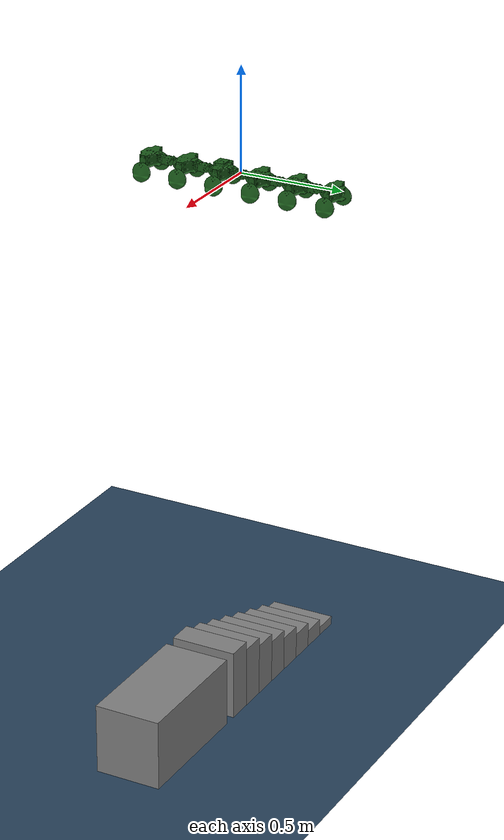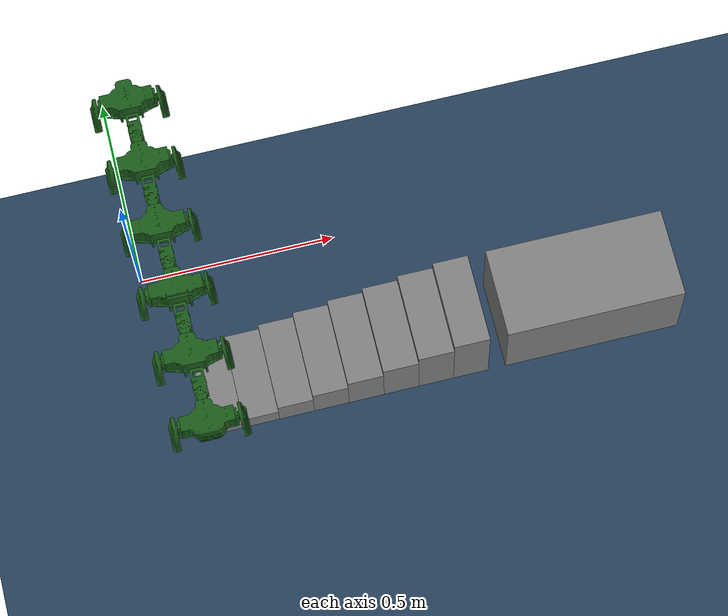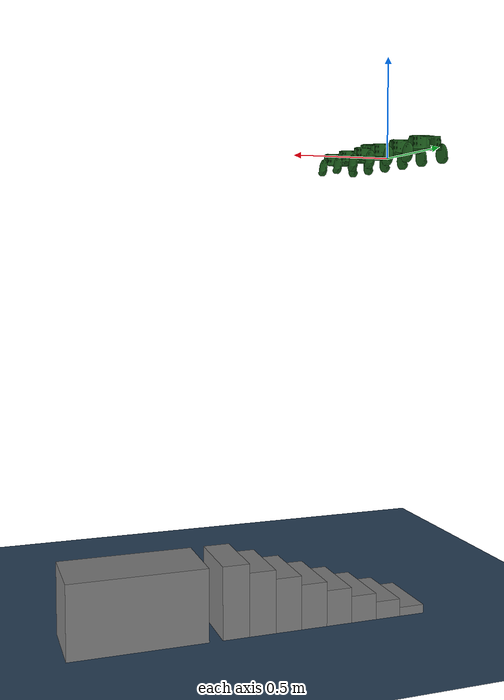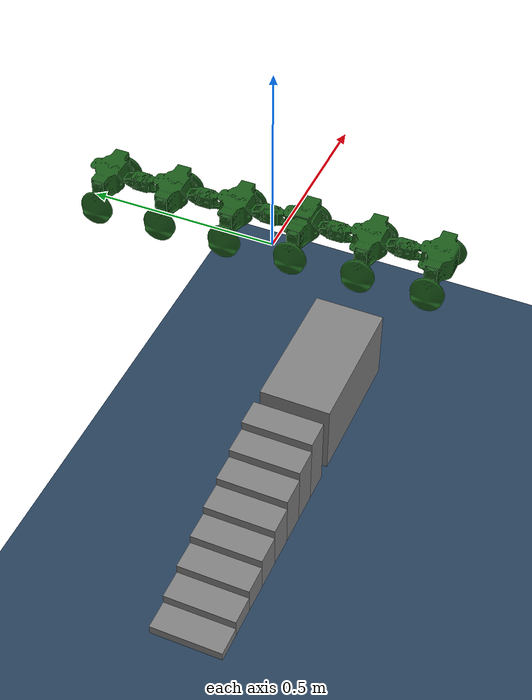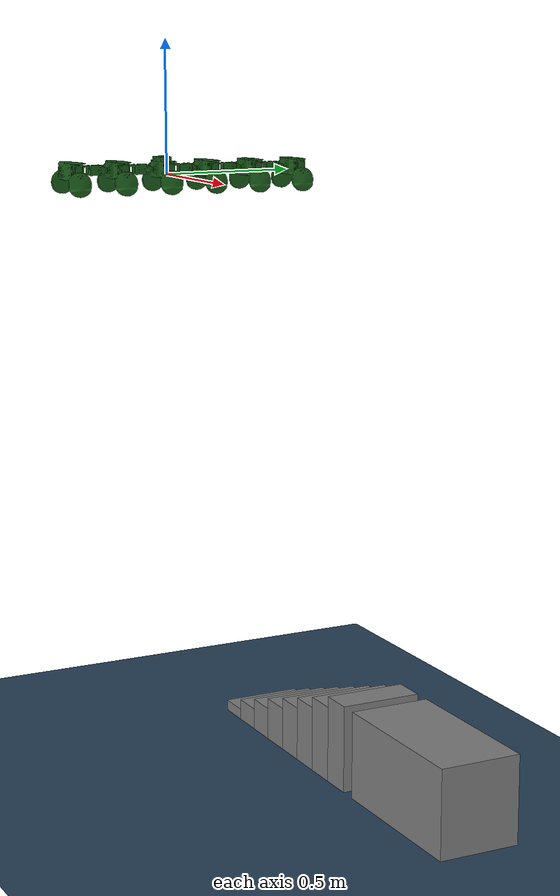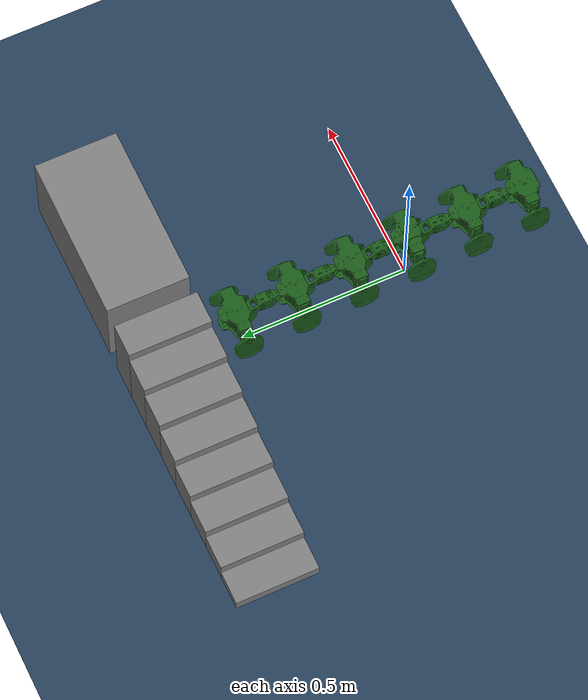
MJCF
<?xml version='1.0' encoding='UTF-8'?>
<mujoco model="scutl_stairs">
  <option timestep="0.004" gravity="0 0 -9.84"/>
  <visual>
    <global offwidth="1920" offheight="1080"/>
  </visual>
  <asset>
    <mesh name="body_middle_mesh" file="body_middle.stl"/>
    <mesh name="body_middle_roof_mesh" file="body_middle_roof.stl"/>
    <mesh name="body_middle_head_mesh" file="body_middle_head.stl"/>
    <mesh name="motor_L_mesh" file="motor_L.stl"/>
    <mesh name="motor_R_mesh" file="motor_R.stl"/>
    <mesh name="o_leg_L_mesh" file="o_leg_L.stl"/>
    <mesh name="o_leg_R_mesh" file="o_leg_R.stl"/>
    <mesh name="body_joint_mesh" file="body_joint.stl"/>
    <texture name="grid" type="2d" builtin="checker" rgb1=".1 .2 .3" rgb2=".2 .3 .4" width="300" height="300"/>
    <texture name="stair_tex" type="2d" builtin="checker" rgb1=".4 .4 .4" rgb2=".6 .6 .6" width="100" height="100"/>
    <material name="grid" texture="grid" texrepeat="30 30" reflectance="0"/>
    <material name="stair_mat" texture="stair_tex" texrepeat="2 2" reflectance="0.1"/>
    <material name="robot_green" rgba="0.1 0.35 0.1 1"/>
  </asset>
  <default>
    <default class="robot">
      <geom material="robot_green" condim="6" friction="1.5 0.05 0.01"/>
    </default>
    <default class="stair">
      <geom type="box" material="stair_mat" condim="6" friction="1.5 0.05 0.01"/>
    </default>
  </default>
  <worldbody>
    <light name="strong_light" pos="0 0 5" dir="0 0 -4" directional="true" diffuse="1 1 4" specular="0.3 0.3 0.6" active="true" castshadow="false" cutoff="100" exponent="10"/>

    <!-- flat approach ground -->
    <geom name="ground" type="plane" pos="0 0 -2.12" size="10 10 0.4" material="grid" condim="6" friction="1.5 0.05 0.01"/>

    <!-- staircase: 8 steps, each 0.04m rise, 0.12m run, 0.3m wide -->
    <!-- step 1 -->
    <geom class="stair" name="step1" size="0.06 0.15 0.02" pos="0.12 0.36184 -2.10"/>
    <!-- step 2 -->
    <geom class="stair" name="step2" size="0.06 0.15 0.04" pos="0.24 0.36184 -2.08"/>
    <!-- step 3 -->
    <geom class="stair" name="step3" size="0.06 0.15 0.06" pos="0.36 0.36184 -2.06"/>
    <!-- step 4 -->
    <geom class="stair" name="step4" size="0.06 0.15 0.08" pos="0.48 0.36184 -2.04"/>
    <!-- step 5 -->
    <geom class="stair" name="step5" size="0.06 0.15 0.10" pos="0.60 0.36184 -2.02"/>
    <!-- step 6 -->
    <geom class="stair" name="step6" size="0.06 0.15 0.12" pos="0.72 0.36184 -2.00"/>
    <!-- step 7 -->
    <geom class="stair" name="step7" size="0.06 0.15 0.14" pos="0.84 0.36184 -1.98"/>
    <!-- step 8 -->
    <geom class="stair" name="step8" size="0.06 0.15 0.16" pos="0.96 0.36184 -1.96"/>
    <!-- landing platform at top -->
    <geom class="stair" name="landing" size="0.30 0.15 0.16" pos="1.38 0.36184 -1.96"/>

    <!-- ===== ROBOT ===== -->
    <body name="body_middle6" pos="-0.00714 0.36184 -0.008">
      <joint name="root_free" type="free"/>
      <geom class="robot" type="mesh" mesh="body_middle_mesh"/>
      <inertial pos="0.074417 0.12845 0.025525" mass="0.08684000" diaginertia="0.00009158204 0.00016920278 0.00017961293"/>

      <body name="motor_L6" pos="0 0 0">
        <inertial pos="0.13525 0.12938 0.022634" mass="0.04388000" diaginertia="0.00000721932 0.00001081797 0.00001232792"/>
        <geom class="robot" type="mesh" mesh="motor_L_mesh"/>
        <body name="o_leg_L6" pos="0 0 0">
          <joint name="knee_joint_L6" type="hinge" pos="-0.009764 0.1294 0.01076" axis="1 0 0" damping="0.5"/>
          <inertial pos="0.16407 0.12939 -0.027134" mass="0.10587964" diaginertia="0.00004860956 0.00005124607 0.00009533636"/>
          <geom class="robot" name="o_leg_L6" type="mesh" mesh="o_leg_L_mesh"/>
        </body>
      </body>
      <body name="motor_R6" pos="0 0 0">
        <inertial pos="0.012712 0.12941 0.022604" mass="0.04388000" diaginertia="0.00000721932 0.00001081797 0.00001232792"/>
        <geom class="robot" type="mesh" mesh="motor_R_mesh"/>
        <body name="o_leg_R6" pos="0 0 0">
          <joint name="knee_joint_R6" type="hinge" pos="-0.009764 0.1294 0.01076" axis="1 0 0" damping="0.5"/>
          <inertial pos="-0.016106 0.1294 -0.027164" mass="0.10587964" diaginertia="0.00004860956 0.00005124607 0.00009533636"/>
          <geom class="robot" name="o_leg_R6" type="mesh" mesh="o_leg_R_mesh"/>
        </body>
      </body>
      <body name="vertjoint6" pos="0 0 0">
        <joint name="vertjoint_hinge6" type="hinge" pos="0.094905 0.086975 0.02858" axis="1 0 0" range="-90 90" damping="0.5"/>
        <inertial pos="0.077976 0.038797 0.027871" mass="0.15853000" diaginertia="0.00004786090 0.00019459966 0.00019531491"/>
        <geom class="robot" type="mesh" mesh="body_joint_mesh"/>
        <body name="horzjoint6_body" pos="0 0 0">
          <joint name="horzjoint6" type="hinge" pos="0.07753 -0.009025 0.045952" axis="0 0 1" range="-90 90" damping="0.5"/>
          <inertial pos="0.07753 -0.009025 0.045952" mass="0.0004" diaginertia="0.000001 0.000001 0.000001"/>
          <body name="body_middle5" pos="0.00357 -0.18092 0.003">
            <geom class="robot" type="mesh" mesh="body_middle_mesh"/>
            <inertial pos="0.074417 0.12845 0.025525" mass="0.08684000" diaginertia="0.00009158204 0.00016920278 0.00017961293"/>
            <body name="motor_L5" pos="0 0 0">
              <inertial pos="0.13525 0.12938 0.022634" mass="0.04388000" diaginertia="0.00000721932 0.00001081797 0.00001232792"/>
              <geom class="robot" type="mesh" mesh="motor_L_mesh"/>
              <body name="o_leg_L5" pos="0 0 0">
                <joint name="knee_joint_L5" type="hinge" pos="-0.009764 0.1294 0.01076" axis="1 0 0" damping="0.5"/>
                <inertial pos="0.16407 0.12939 -0.027134" mass="0.10587964" diaginertia="0.00004860956 0.00005124607 0.00009533636"/>
                <geom class="robot" name="o_leg_L5" type="mesh" mesh="o_leg_L_mesh"/>
              </body>
            </body>
            <body name="motor_R5" pos="0 0 0">
              <inertial pos="0.012712 0.12941 0.022604" mass="0.04388000" diaginertia="0.00000721932 0.00001081797 0.00001232792"/>
              <geom class="robot" type="mesh" mesh="motor_R_mesh"/>
              <body name="o_leg_R5" pos="0 0 0">
                <joint name="knee_joint_R5" type="hinge" pos="-0.009764 0.1294 0.01076" axis="1 0 0" damping="0.5"/>
                <inertial pos="-0.016106 0.1294 -0.027164" mass="0.10587964" diaginertia="0.00004860956 0.00005124607 0.00009533636"/>
                <geom class="robot" name="o_leg_R5" type="mesh" mesh="o_leg_R_mesh"/>
              </body>
            </body>
            <body name="vertjoint5" pos="0 0 0">
              <joint name="vertjoint_hinge5" type="hinge" pos="0.094905 0.086975 0.02858" axis="1 0 0" range="-90 90" damping="0.5"/>
              <inertial pos="0.077976 0.038797 0.027871" mass="0.15853000" diaginertia="0.00004786090 0.00019459966 0.00019531491"/>
              <geom class="robot" type="mesh" mesh="body_joint_mesh"/>
              <body name="horzjoint5_body" pos="0 0 0">
                <joint name="horzjoint5" type="hinge" pos="0.07753 -0.009025 0.045952" axis="0 0 1" range="-90 90" damping="0.5"/>
                <inertial pos="0.07753 -0.009025 0.045952" mass="0.0004" diaginertia="0.000001 0.000001 0.000001"/>
                <body name="body_middle4" pos="0.00357 -0.18092 0.003">
                  <geom class="robot" type="mesh" mesh="body_middle_mesh"/>
                  <inertial pos="0.074417 0.12845 0.025525" mass="0.08684000" diaginertia="0.00009158204 0.00016920278 0.00017961293"/>
                  <body name="motor_L4" pos="0 0 0">
                    <inertial pos="0.13525 0.12938 0.022634" mass="0.04388000" diaginertia="0.00000721932 0.00001081797 0.00001232792"/>
                    <geom class="robot" type="mesh" mesh="motor_L_mesh"/>
                    <body name="o_leg_L4" pos="0 0 0">
                      <joint name="knee_joint_L4" type="hinge" pos="-0.009764 0.1294 0.01076" axis="1 0 0" damping="0.5"/>
                      <inertial pos="0.16407 0.12939 -0.027134" mass="0.10587964" diaginertia="0.00004860956 0.00005124607 0.00009533636"/>
                      <geom class="robot" name="o_leg_L4" type="mesh" mesh="o_leg_L_mesh"/>
                    </body>
                  </body>
                  <body name="motor_R4" pos="0 0 0">
                    <inertial pos="0.012712 0.12941 0.022604" mass="0.04388000" diaginertia="0.00000721932 0.00001081797 0.00001232792"/>
                    <geom class="robot" type="mesh" mesh="motor_R_mesh"/>
                    <body name="o_leg_R4" pos="0 0 0">
                      <joint name="knee_joint_R4" type="hinge" pos="-0.009764 0.1294 0.01076" axis="1 0 0" damping="0.5"/>
                      <inertial pos="-0.016106 0.1294 -0.027164" mass="0.10587964" diaginertia="0.00004860956 0.00005124607 0.00009533636"/>
                      <geom class="robot" name="o_leg_R4" type="mesh" mesh="o_leg_R_mesh"/>
                    </body>
                  </body>
                  <body name="vertjoint4" pos="0 0 0">
                    <joint name="vertjoint_hinge4" type="hinge" pos="0.094905 0.086975 0.02858" axis="1 0 0" range="-90 90" damping="0.5"/>
                    <inertial pos="0.077976 0.038797 0.027871" mass="0.15853000" diaginertia="0.00004786090 0.00019459966 0.00019531491"/>
                    <geom class="robot" type="mesh" mesh="body_joint_mesh"/>
                    <body name="horzjoint4_body" pos="0 0 0">
                      <joint name="horzjoint4" type="hinge" pos="0.07753 -0.009025 0.045952" axis="0 0 1" range="-90 90" damping="0.5"/>
                      <inertial pos="0.07753 -0.009025 0.045952" mass="0.0004" diaginertia="0.000001 0.000001 0.000001"/>
                      <body name="body_middle3" pos="0.00357 -0.18092 0.003">
                        <camera name="robot_center_scene_camera" pos="0.074 0.064 0.120" xyaxes="-1 0 0 0 0 1" fovy="90"/>
                        <geom class="robot" type="mesh" mesh="body_middle_roof_mesh"/>
                        <inertial pos="0.074417 0.12845 0.025525" mass="0.08684000" diaginertia="0.00009158204 0.00016920278 0.00017961293"/>
                        <body name="motor_L3" pos="0 0 0">
                          <inertial pos="0.13525 0.12938 0.022634" mass="0.04388000" diaginertia="0.00000721932 0.00001081797 0.00001232792"/>
                          <geom class="robot" type="mesh" mesh="motor_L_mesh"/>
                          <body name="o_leg_L3" pos="0 0 0">
                            <joint name="knee_joint_L3" type="hinge" pos="-0.009764 0.1294 0.01076" axis="1 0 0" damping="0.5"/>
                            <inertial pos="0.16407 0.12939 -0.027134" mass="0.10587964" diaginertia="0.00004860956 0.00005124607 0.00009533636"/>
                            <geom class="robot" name="o_leg_L3" type="mesh" mesh="o_leg_L_mesh"/>
                          </body>
                        </body>
                        <body name="motor_R3" pos="0 0 0">
                          <inertial pos="0.012712 0.12941 0.022604" mass="0.04388000" diaginertia="0.00000721932 0.00001081797 0.00001232792"/>
                          <geom class="robot" type="mesh" mesh="motor_R_mesh"/>
                          <body name="o_leg_R3" pos="0 0 0">
                            <joint name="knee_joint_R3" type="hinge" pos="-0.009764 0.1294 0.01076" axis="1 0 0" damping="0.5"/>
                            <inertial pos="-0.016106 0.1294 -0.027164" mass="0.10587964" diaginertia="0.00004860956 0.00005124607 0.00009533636"/>
                            <geom class="robot" name="o_leg_R3" type="mesh" mesh="o_leg_R_mesh"/>
                          </body>
                        </body>
                        <body name="vertjoint3" pos="0 0 0">
                          <joint name="vertjoint_hinge3" type="hinge" pos="0.094905 0.086975 0.02858" axis="1 0 0" range="-90 90" damping="0.5"/>
                          <inertial pos="0.077976 0.038797 0.027871" mass="0.15853000" diaginertia="0.00004786090 0.00019459966 0.00019531491"/>
                          <geom class="robot" type="mesh" mesh="body_joint_mesh"/>
                          <body name="horzjoint3_body" pos="0 0 0">
                            <joint name="horzjoint3" type="hinge" pos="0.07753 -0.009025 0.045952" axis="0 0 1" range="-90 90" damping="0.5"/>
                            <inertial pos="0.07753 -0.009025 0.045952" mass="0.0004" diaginertia="0.000001 0.000001 0.000001"/>
                            <body name="body_middle2" pos="0.00357 -0.18092 0.003">
                              <geom class="robot" type="mesh" mesh="body_middle_mesh"/>
                              <inertial pos="0.074417 0.12845 0.025525" mass="0.08684000" diaginertia="0.00009158204 0.00016920278 0.00017961293"/>
                              <body name="motor_L2" pos="0 0 0">
                                <inertial pos="0.13525 0.12938 0.022634" mass="0.04388000" diaginertia="0.00000721932 0.00001081797 0.00001232792"/>
                                <geom class="robot" type="mesh" mesh="motor_L_mesh"/>
                                <body name="o_leg_L2" pos="0 0 0">
                                  <joint name="knee_joint_L2" type="hinge" pos="-0.009764 0.1294 0.01076" axis="1 0 0" damping="0.5"/>
                                  <inertial pos="0.16407 0.12939 -0.027134" mass="0.10587964" diaginertia="0.00004860956 0.00005124607 0.00009533636"/>
                                  <geom class="robot" name="o_leg_L2" type="mesh" mesh="o_leg_L_mesh"/>
                                </body>
                              </body>
                              <body name="motor_R2" pos="0 0 0">
                                <inertial pos="0.012712 0.12941 0.022604" mass="0.04388000" diaginertia="0.00000721932 0.00001081797 0.00001232792"/>
                                <geom class="robot" type="mesh" mesh="motor_R_mesh"/>
                                <body name="o_leg_R2" pos="0 0 0">
                                  <joint name="knee_joint_R2" type="hinge" pos="-0.009764 0.1294 0.01076" axis="1 0 0" damping="0.5"/>
                                  <inertial pos="-0.016106 0.1294 -0.027164" mass="0.10587964" diaginertia="0.00004860956 0.00005124607 0.00009533636"/>
                                  <geom class="robot" name="o_leg_R2" type="mesh" mesh="o_leg_R_mesh"/>
                                </body>
                              </body>
                              <body name="vertjoint2" pos="0 0 0">
                                <joint name="vertjoint_hinge2" type="hinge" pos="0.094905 0.086975 0.02858" axis="1 0 0" range="-90 90" damping="0.5"/>
                                <inertial pos="0.077976 0.038797 0.027871" mass="0.15853000" diaginertia="0.00004786090 0.00019459966 0.00019531491"/>
                                <geom class="robot" type="mesh" mesh="body_joint_mesh"/>
                                <body name="horzjoint2_body" pos="0 0 0">
                                  <joint name="horzjoint2" type="hinge" pos="0.07753 -0.009025 0.045952" axis="0 0 1" range="-90 90" damping="0.5"/>
                                  <inertial pos="0.07753 -0.009025 0.045952" mass="0.0004" diaginertia="0.000001 0.000001 0.000001"/>
                                  <body name="body_middle1" pos="0.00357 -0.18092 0.003">
                                    <geom class="robot" type="mesh" mesh="body_middle_head_mesh"/>
                                    <inertial pos="0.074417 0.12845 0.025525" mass="0.08684000" diaginertia="0.00009158204 0.00016920278 0.00017961293"/>
                                    <body name="motor_L1" pos="0 0 0">
                                      <inertial pos="0.13525 0.12938 0.022634" mass="0.04388000" diaginertia="0.00000721932 0.00001081797 0.00001232792"/>
                                      <geom class="robot" type="mesh" mesh="motor_L_mesh"/>
                                      <body name="o_leg_L1" pos="0 0 0">
                                        <joint name="knee_joint_L1" type="hinge" pos="-0.009764 0.1294 0.01076" axis="1 0 0" damping="0.5"/>
                                        <inertial pos="0.16407 0.12939 -0.027134" mass="0.10587964" diaginertia="0.00004860956 0.00005124607 0.00009533636"/>
                                        <geom class="robot" name="o_leg_L1" type="mesh" mesh="o_leg_L_mesh"/>
                                      </body>
                                    </body>
                                    <body name="motor_R1" pos="0 0 0">
                                      <inertial pos="0.012712 0.12941 0.022604" mass="0.04388000" diaginertia="0.00000721932 0.00001081797 0.00001232792"/>
                                      <geom class="robot" type="mesh" mesh="motor_R_mesh"/>
                                      <body name="o_leg_R1" pos="0 0 0">
                                        <joint name="knee_joint_R1" type="hinge" pos="-0.009764 0.1294 0.01076" axis="1 0 0" damping="0.5"/>
                                        <inertial pos="-0.016106 0.1294 -0.027164" mass="0.10587964" diaginertia="0.00004860956 0.00005124607 0.00009533636"/>
                                        <geom class="robot" name="o_leg_R1" type="mesh" mesh="o_leg_R_mesh"/>
                                      </body>
                                    </body>
                                  </body>
                                </body>
                              </body>
                            </body>
                          </body>
                        </body>
                      </body>
                    </body>
                  </body>
                </body>
              </body>
            </body>
          </body>
        </body>
      </body>
    </body>
  </worldbody>

  <actuator>
    <position name="knee_L6" joint="knee_joint_L6" kp="10" forcerange="-4 4"/>
    <position name="knee_R6" joint="knee_joint_R6" kp="10" forcerange="-4 4"/>
    <position name="vertjoint6" joint="vertjoint_hinge6" ctrlrange="-100 100" kp="10" forcerange="-5 5"/>
    <position name="horzjoint6" joint="horzjoint6" ctrlrange="-100 100" kp="10"/>
    <position name="knee_L5" joint="knee_joint_L5" kp="10" forcerange="-4 4"/>
    <position name="knee_R5" joint="knee_joint_R5" kp="10" forcerange="-4 4"/>
    <position name="vertjoint5" joint="vertjoint_hinge5" ctrlrange="-100 100" kp="10" forcerange="-5 5"/>
    <position name="horzjoint5" joint="horzjoint5" ctrlrange="-100 100" kp="10"/>
    <position name="knee_L4" joint="knee_joint_L4" kp="10" forcerange="-4 4"/>
    <position name="knee_R4" joint="knee_joint_R4" kp="10" forcerange="-4 4"/>
    <position name="vertjoint4" joint="vertjoint_hinge4" ctrlrange="-100 100" kp="10" forcerange="-5 5"/>
    <position name="horzjoint4" joint="horzjoint4" ctrlrange="-100 100" kp="10"/>
    <position name="knee_L3" joint="knee_joint_L3" kp="10" forcerange="-4 4"/>
    <position name="knee_R3" joint="knee_joint_R3" kp="10" forcerange="-4 4"/>
    <position name="vertjoint3" joint="vertjoint_hinge3" ctrlrange="-100 100" kp="10" forcerange="-5 5"/>
    <position name="horzjoint3" joint="horzjoint3" ctrlrange="-100 100" kp="10"/>
    <position name="knee_L2" joint="knee_joint_L2" kp="10" forcerange="-4 4"/>
    <position name="knee_R2" joint="knee_joint_R2" kp="10" forcerange="-4 4"/>
    <position name="vertjoint2" joint="vertjoint_hinge2" ctrlrange="-100 100" kp="10" forcerange="-5 5"/>
    <position name="horzjoint2" joint="horzjoint2" ctrlrange="-100 100" kp="10"/>
    <position name="knee_L1" joint="knee_joint_L1" kp="10" forcerange="-4 4"/>
    <position name="knee_R1" joint="knee_joint_R1" kp="10" forcerange="-4 4"/>
  </actuator>
</mujoco>
